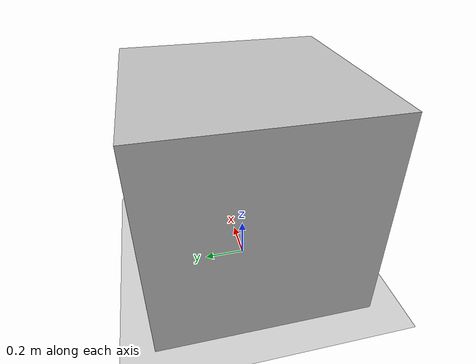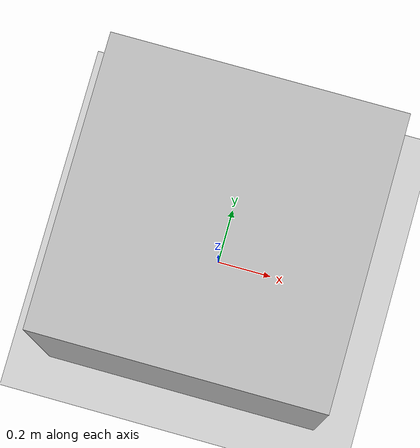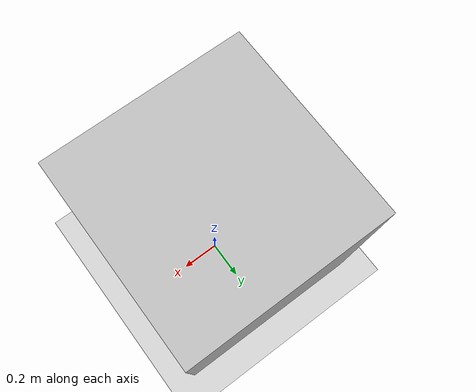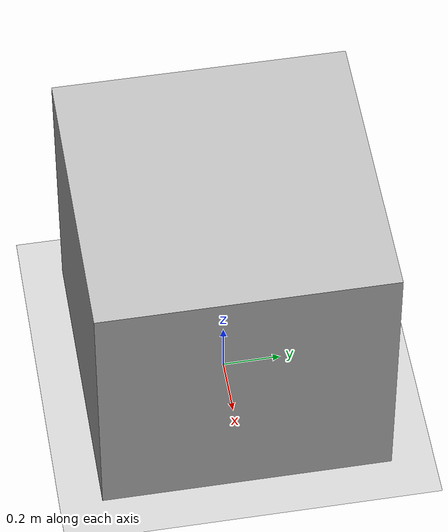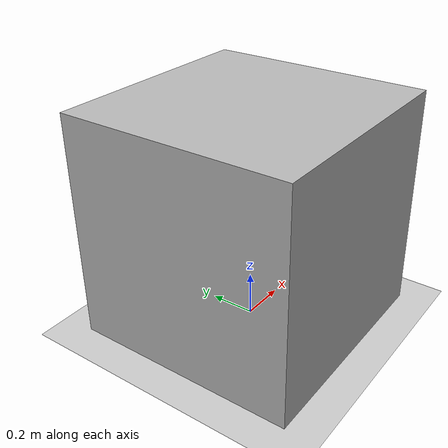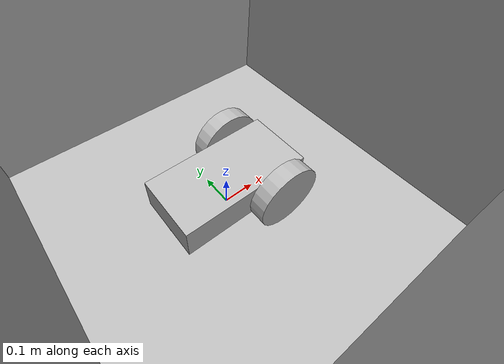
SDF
<?xml version="1.0" ?>
<sdf version="1.4">
  <world name="default">
    <include>
      <uri>model://ground_plane</uri>
    </include>

    <include>
      <uri>model://sun</uri>
    </include>

    <model name="my_robot">
        <static>false</static>
        <link name='chassis'>
          <pose>0 0 .1 0 0 0</pose>
          <collision name='collision'>
            <geometry>
              <box>
                <size>.4 .2 .1</size>
              </box>
            </geometry>
          </collision>

          <visual name='visual'>
            <geometry>
              <box>
                <size>.4 .2 .1</size>
              </box>
            </geometry>
          </visual>

          <collision name='caster_collision'>
            <pose>-0.15 0 -0.05 0 0 0</pose>
            <geometry>
              <sphere>
              <radius>.05</radius>
            </sphere>
          </geometry>

          <surface>
            <friction>
              <ode>
                <mu>0</mu>
                <mu2>0</mu2>
                <slip1>1.0</slip1>
                <slip2>1.0</slip2>
              </ode>
            </friction>
          </surface>
        </collision>

        <visual name='caster_visual'>
          <pose>-0.15 0 -0.05 0 0 0</pose>
          <geometry>
            <sphere>
              <radius>.05</radius>
            </sphere>
          </geometry>
        </visual>
      </link>
      <link name="left_wheel">
        <pose>0.1 0.13 0.1 0 1.5707 1.5707</pose>
        <collision name="collision">
          <geometry>
            <cylinder>
              <radius>.1</radius>
              <length>.05</length>
            </cylinder>
          </geometry>
        </collision>
        <visual name="visual">
          <geometry>
            <cylinder>
              <radius>.1</radius>
              <length>.05</length>
            </cylinder>
          </geometry>
        </visual>
      </link>

      <link name="right_wheel">
        <pose>0.1 -0.13 0.1 0 1.5707 1.5707</pose>
        <collision name="collision">
          <geometry>
            <cylinder>
              <radius>.1</radius>
              <length>.05</length>
            </cylinder>
          </geometry>
        </collision>
        <visual name="visual">
          <geometry>
            <cylinder>
              <radius>.1</radius>
              <length>.05</length>
            </cylinder>
          </geometry>
        </visual>
      </link>
      <joint type="revolute" name="left_wheel_hinge">
        <pose>0 0 -0.03 0 0 0</pose>
        <child>left_wheel</child>
        <parent>chassis</parent>
        <axis>
          <xyz>0 1 0</xyz>
        </axis>
      </joint>

      <joint type="revolute" name="right_wheel_hinge">
        <pose>0 0 0.03 0 0 0</pose>
        <child>right_wheel</child>
        <parent>chassis</parent>
        <axis>
          <xyz>0 1 0</xyz>
        </axis>
      </joint>

      <plugin name="race_car" filename="libgz_formula_car.so"/>

    </model>

    <model name="box">

      <pose>0 0 0.5 0 0 0</pose>

      <link name="link">

        <collision name="collision">
          <geometry>
            <box>
              <size>1 1 1</size>
            </box>
          </geometry>
        </collision>

        <visual name="visual">
          <geometry>
            <box>
              <size>1 1 1</size>
            </box>
          </geometry>
        </visual>

      </link>

      <plugin name="tracker" filename="libgz_tracker.so"/>

    </model>

  </world>
</sdf>
